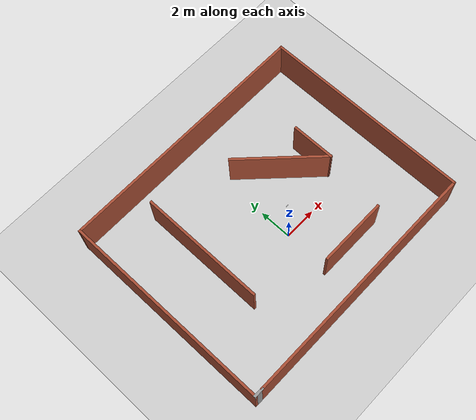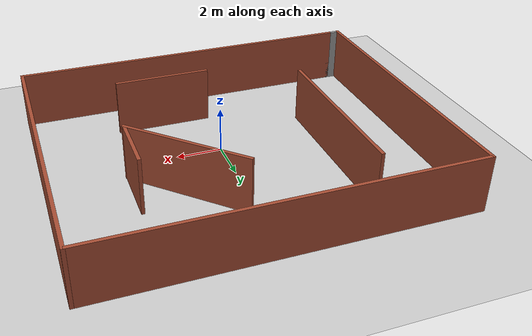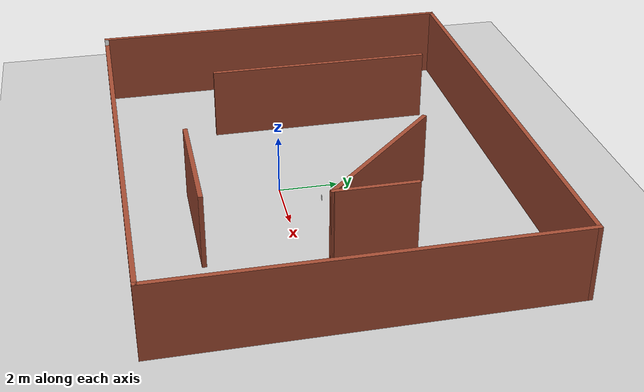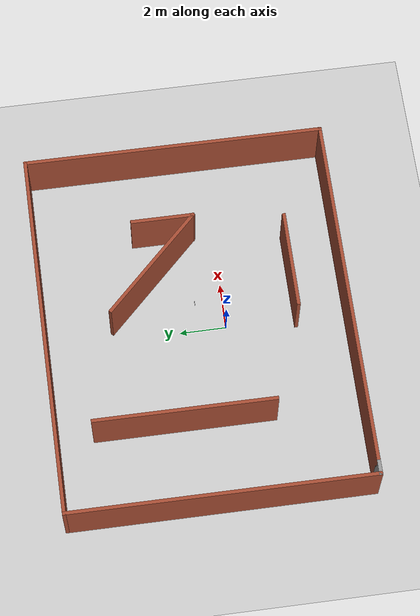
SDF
<?xml version='1.0'?>
<sdf version='1.7'>
  <world name='warehouse'>
    <plugin name="gazebo_ros_state" filename="libgazebo_ros_state.so"/>

    <include>
      <uri>model://ground_plane</uri>
    </include>

    <include>
      <uri>model://aruco_marker_0</uri>
      <pose>1.2 1.2 0.3 1.5708 0 0</pose>
    </include>
    <include>
      <uri>model://sun</uri>
    </include>

    <model name="maze">
      <pose>-0.195 1.275 0 0 -0 0</pose>
      <link name='Wall_1'>
        <collision name='Wall_1_Collision'>
          <geometry>
            <box>
              <size>15.5 0.15 2.5</size>
            </box>
          </geometry>
          <pose>0 0 1.25 0 -0 0</pose>
        </collision>
        <visual name='Wall_1_Visual'>
          <pose>0 0 1.25 0 -0 0</pose>
          <geometry>
            <box>
              <size>15.5 0.15 2.5</size>
            </box>
          </geometry>
          <material>
            <script>
              <uri>file://media/materials/scripts/gazebo.material</uri>
              <name>Gazebo/Bricks</name>
            </script>
            <ambient>1 1 1 1</ambient>
          </material>
          <meta>
            <layer>0</layer>
          </meta>
        </visual>
        <pose>0.25 -6.425 0 0 -0 0</pose>
      </link>
      <link name='Wall_17'>
        <collision name='Wall_17_Collision'>
          <geometry>
            <box>
              <size>13 0.15 2.5</size>
            </box>
          </geometry>
          <pose>0 0 1.25 0 -0 0</pose>
        </collision>
        <visual name='Wall_17_Visual'>
          <pose>0 0 1.25 0 -0 0</pose>
          <geometry>
            <box>
              <size>13 0.15 2.5</size>
            </box>
          </geometry>
          <material>
            <script>
              <uri>file://media/materials/scripts/gazebo.material</uri>
              <name>Gazebo/Bricks</name>
            </script>
            <ambient>1 1 1 1</ambient>
          </material>
          <meta>
            <layer>0</layer>
          </meta>
        </visual>
        <pose>7.925 -0 0 0 -0 1.5708</pose>
      </link>
      <link name='Wall_18'>
        <collision name='Wall_18_Collision'>
          <geometry>
            <box>
              <size>16 0.15 2.5</size>
            </box>
          </geometry>
          <pose>0 0 1.25 0 -0 0</pose>
        </collision>
        <visual name='Wall_18_Visual'>
          <pose>0 0 1.25 0 -0 0</pose>
          <geometry>
            <box>
              <size>16 0.15 2.5</size>
            </box>
          </geometry>
          <material>
            <script>
              <uri>file://media/materials/scripts/gazebo.material</uri>
              <name>Gazebo/Bricks</name>
            </script>
            <ambient>1 1 1 1</ambient>
          </material>
          <meta>
            <layer>0</layer>
          </meta>
        </visual>
        <pose>-0 6.425 0 0 -0 3.14159</pose>
      </link>
      <link name='Wall_19'>
        <collision name='Wall_19_Collision'>
          <geometry>
            <box>
              <size>13 0.15 2.5</size>
            </box>
          </geometry>
          <pose>0 0 1.25 0 -0 0</pose>
        </collision>
        <visual name='Wall_19_Visual'>
          <pose>0 0 1.25 0 -0 0</pose>
          <geometry>
            <box>
              <size>13 0.15 2.5</size>
            </box>
          </geometry>
          <material>
            <script>
              <uri>file://media/materials/scripts/gazebo.material</uri>
              <name>Gazebo/Bricks</name>
            </script>
            <ambient>1 1 1 1</ambient>
          </material>
          <meta>
            <layer>0</layer>
          </meta>
        </visual>
        <pose>-7.925 -0 0 0 -0 -1.5708</pose>
      </link>
      <link name='Wall_20'>
        <collision name='Wall_20_Collision'>
          <geometry>
            <box>
              <size>0.65 0.15 2.5</size>
            </box>
          </geometry>
          <pose>0 0 1.25 0 -0 0</pose>
        </collision>
        <visual name='Wall_20_Visual'>
          <pose>0 0 1.25 0 -0 0</pose>
          <geometry>
            <box>
              <size>0.65 0.15 2.5</size>
            </box>
          </geometry>
          <material>
            <script>
              <uri>file://media/materials/scripts/gazebo.material</uri>
              <name>Gazebo/Grey</name>
            </script>
            <ambient>1 1 1 1</ambient>
          </material>
          <meta>
            <layer>0</layer>
          </meta>
        </visual>
        <pose>-7.675 -6.425 0 0 -0 0</pose>
      </link>
      <link name='Wall_30'>
        <collision name='Wall_30_Collision'>
          <geometry>
            <box>
              <size>7.75 0.15 2.5</size>
            </box>
          </geometry>
          <pose>0 0 1.25 0 -0 0</pose>
        </collision>
        <visual name='Wall_30_Visual'>
          <pose>0 0 1.25 0 -0 0</pose>
          <geometry>
            <box>
              <size>7.75 0.15 2.5</size>
            </box>
          </geometry>
          <material>
            <script>
              <uri>file://media/materials/scripts/gazebo.material</uri>
              <name>Gazebo/Bricks</name>
            </script>
            <ambient>1 1 1 1</ambient>
          </material>
          <meta>
            <layer>0</layer>
          </meta>
        </visual>
        <pose>-4.16711 1.04636 0 0 -0 -1.5708</pose>
      </link>
      <link name='Wall_32'>
        <collision name='Wall_32_Collision'>
          <geometry>
            <box>
              <size>4.25 0.15 2.5</size>
            </box>
          </geometry>
          <pose>0 0 1.25 0 -0 0</pose>
        </collision>
        <visual name='Wall_32_Visual'>
          <pose>0 0 1.25 0 -0 0</pose>
          <geometry>
            <box>
              <size>4.25 0.15 2.5</size>
            </box>
          </geometry>
          <material>
            <script>
              <uri>file://media/materials/scripts/gazebo.material</uri>
              <name>Gazebo/Bricks</name>
            </script>
            <ambient>1 1 1 1</ambient>
          </material>
          <meta>
            <layer>0</layer>
          </meta>
        </visual>
        <pose>1.96363 -4.26494 0 0 -0 0</pose>
      </link>
      <link name='Wall_34'>
        <collision name='Wall_34_Collision'>
          <geometry>
            <box>
              <size>5.75 0.15 2.5</size>
            </box>
          </geometry>
          <pose>0 0 1.25 0 -0 0</pose>
        </collision>
        <visual name='Wall_34_Visual'>
          <pose>0 0 1.25 0 -0 0</pose>
          <geometry>
            <box>
              <size>5.75 0.15 2.5</size>
            </box>
          </geometry>
          <material>
            <script>
              <uri>file://media/materials/scripts/gazebo.material</uri>
              <name>Gazebo/Bricks</name>
            </script>
            <ambient>1 1 1 1</ambient>
          </material>
          <meta>
            <layer>0</layer>
          </meta>
        </visual>
        <pose>2.56192 1.56485 0 0 -0 -0.785398</pose>
      </link>
      <link name='Wall_35'>
        <collision name='Wall_35_Collision'>
          <geometry>
            <box>
              <size>2.75 0.15 2.5</size>
            </box>
          </geometry>
          <pose>0 0 1.25 0 -0 0</pose>
        </collision>
        <visual name='Wall_35_Visual'>
          <pose>0 0 1.25 0 -0 0</pose>
          <geometry>
            <box>
              <size>2.75 0.15 2.5</size>
            </box>
          </geometry>
          <material>
            <script>
              <uri>file://media/materials/scripts/gazebo.material</uri>
              <name>Gazebo/Bricks</name>
            </script>
            <ambient>1 1 1 1</ambient>
          </material>
          <meta>
            <layer>0</layer>
          </meta>
        </visual>
        <pose>4.54182 0.884953 0 0 -0 1.5708</pose>
      </link>
      <static>1</static>
    </model>
  </world>
</sdf>

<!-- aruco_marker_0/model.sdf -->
<sdf version="1.6">
  <model name="aruco_marker_0">
    <static>true</static>
    <link name="link">
      <visual name="visual">
        <geometry>
          <box>
            <size>0.15 0.15 0.01</size>
          </box>
        </geometry>
        <material>
          <ambient>1 1 1 1</ambient>
          <diffuse>1 1 1 1</diffuse>
          <script>
            <uri>model://aruco_marker_0/materials/scripts</uri>
            <uri>model://aruco_marker_0/materials/textures</uri>
            <name>ArUco/Marker0</name>
          </script>
        </material>
      </visual>
      <collision name="collision">
        <geometry>
          <box>
            <size>0.15 0.15 0.01</size>
          </box>
        </geometry>
      </collision>
    </link>
  </model>
</sdf>
